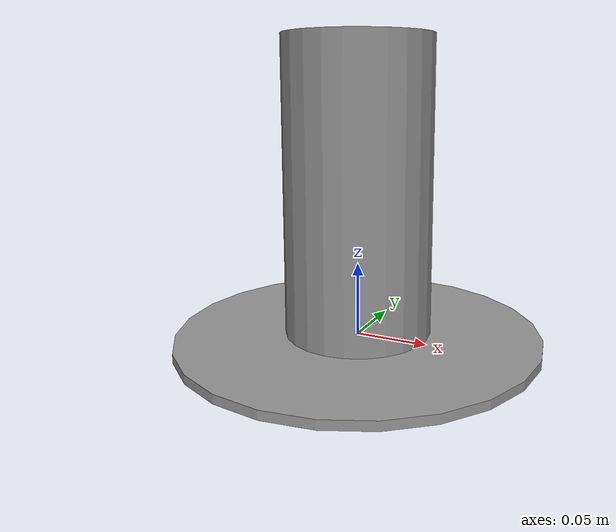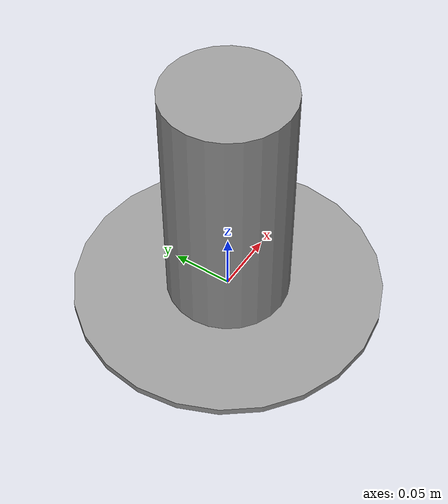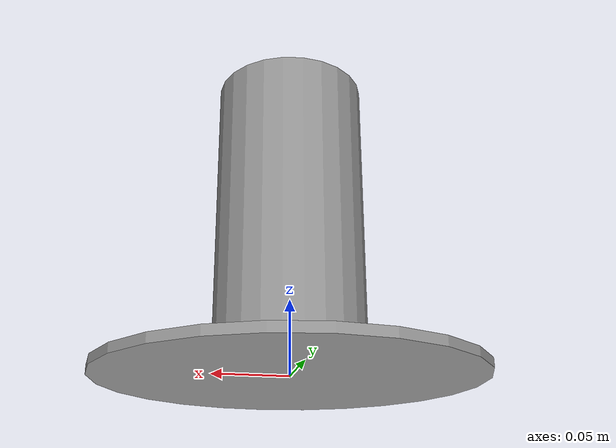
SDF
<?xml version='1.0'?>
<sdf version='1.6'>
  <model name='stand'>
    <link name='link_0'>
      <pose frame=''>0 0 0 0 0 0</pose>
      <inertial>
        <mass>5</mass>
        <inertia>
          <ixx>0.145833</ixx>
          <ixy>0</ixy>
          <ixz>0</ixz>
          <iyy>0.145833</iyy>
          <iyz>0</iyz>
          <izz>0.125</izz>
        </inertia>
        <pose frame=''>0 0 0 0 0 0</pose>
      </inertial>
      <gravity>1</gravity>
      <self_collide>0</self_collide>
      <kinematic>0</kinematic>
      <visual name='visual'>
        <pose frame=''>0 0 0 0 0 0</pose>
        <geometry>
          <cylinder>
            <radius>0.125</radius>
            <length>0.006</length>
          </cylinder>
        </geometry>
        <material>
          <lighting>1</lighting>
          <script>
            <uri>file://media/materials/scripts/gazebo.material</uri>
            <name>Gazebo/Grey</name>
          </script>
          <ambient>0.3 0.3 0.3 1</ambient>
          <diffuse>0.7 0.7 0.7 1</diffuse>
          <specular>0.01 0.01 0.01 1</specular>
          <emissive>0 0 0 1</emissive>
          <shader type='vertex'>
            <normal_map>__default__</normal_map>
          </shader>
        </material>
        <transparency>0</transparency>
        <cast_shadows>1</cast_shadows>
      </visual>
      <collision name='collision'>
        <laser_retro>0</laser_retro>
        <max_contacts>10</max_contacts>
        <pose frame=''>0 0 0 0 0 0</pose>
        <geometry>
          <cylinder>
            <radius>0.125</radius>
            <length>0.006</length>
          </cylinder>
        </geometry>
        <surface>
          <friction>
            <ode>
              <mu>1000000</mu>
              <mu2>1000000</mu2>
              <fdir1>0 0 0</fdir1>
              <slip1>0</slip1>
              <slip2>0</slip2>
            </ode>
            <torsional>
              <coefficient>1</coefficient>
              <patch_radius>0</patch_radius>
              <surface_radius>0</surface_radius>
              <use_patch_radius>1</use_patch_radius>
              <ode>
                <slip>0</slip>
              </ode>
            </torsional>
          </friction>
          <bounce>
            <restitution_coefficient>0</restitution_coefficient>
            <threshold>1e+06</threshold>
          </bounce>
          <contact>
            <collide_without_contact>0</collide_without_contact>
            <collide_without_contact_bitmask>1</collide_without_contact_bitmask>
            <collide_bitmask>1</collide_bitmask>
            <ode>
              <soft_cfm>0</soft_cfm>
              <soft_erp>0.2</soft_erp>
              <kp>1e+13</kp>
              <kd>1</kd>
              <max_vel>0.01</max_vel>
              <min_depth>0</min_depth>
            </ode>
            <bullet>
              <split_impulse>1</split_impulse>
              <split_impulse_penetration_threshold>-0.01</split_impulse_penetration_threshold>
              <soft_cfm>0</soft_cfm>
              <soft_erp>0.2</soft_erp>
              <kp>1e+13</kp>
              <kd>1</kd>
            </bullet>
          </contact>
        </surface>
      </collision>
    </link>
    <link name='link_1'>
      <pose frame=''>0 0 0.103 0 0 0</pose>
      <inertial>
        <mass>1</mass>
        <inertia>
          <ixx>0.145833</ixx>
          <ixy>0</ixy>
          <ixz>0</ixz>
          <iyy>0.145833</iyy>
          <iyz>0</iyz>
          <izz>0.125</izz>
        </inertia>
        <pose frame=''>0 0 0 0 0 0</pose>
      </inertial>
      <gravity>1</gravity>
      <self_collide>0</self_collide>
      <kinematic>0</kinematic>
      <visual name='visual'>
        <pose frame=''>0 0 0 0 0 0</pose>
        <geometry>
          <cylinder>
            <radius>0.05</radius>
            <length>0.2</length>
          </cylinder>
        </geometry>
        <material>
          <lighting>1</lighting>
          <script>
            <uri>file://media/materials/scripts/gazebo.material</uri>
            <name>Gazebo/Grey</name>
          </script>
          <ambient>0.3 0.3 0.3 1</ambient>
          <diffuse>0.7 0.7 0.7 1</diffuse>
          <specular>0.01 0.01 0.01 1</specular>
          <emissive>0 0 0 1</emissive>
          <shader type='vertex'>
            <normal_map>__default__</normal_map>
          </shader>
        </material>
        <transparency>0</transparency>
        <cast_shadows>1</cast_shadows>
      </visual>
      <collision name='collision'>
        <laser_retro>0</laser_retro>
        <max_contacts>10</max_contacts>
        <pose frame=''>0 0 0 0 0 0</pose>
        <geometry>
          <cylinder>
            <radius>0.05</radius>
            <length>0.2</length>
          </cylinder>
        </geometry>
        <surface>
          <friction>
            <ode>
              <mu>1000000</mu>
              <mu2>1000000</mu2>
              <fdir1>0 0 0</fdir1>
              <slip1>0</slip1>
              <slip2>0</slip2>
            </ode>
            <torsional>
              <coefficient>1</coefficient>
              <patch_radius>0</patch_radius>
              <surface_radius>0</surface_radius>
              <use_patch_radius>1</use_patch_radius>
              <ode>
                <slip>0</slip>
              </ode>
            </torsional>
          </friction>
          <bounce>
            <restitution_coefficient>0</restitution_coefficient>
            <threshold>1e+06</threshold>
          </bounce>
          <contact>
            <collide_without_contact>0</collide_without_contact>
            <collide_without_contact_bitmask>1</collide_without_contact_bitmask>
            <collide_bitmask>1</collide_bitmask>
            <ode>
              <soft_cfm>0</soft_cfm>
              <soft_erp>0.2</soft_erp>
              <kp>1e+13</kp>
              <kd>1</kd>
              <max_vel>0.01</max_vel>
              <min_depth>0</min_depth>
            </ode>
            <bullet>
              <split_impulse>1</split_impulse>
              <split_impulse_penetration_threshold>-0.01</split_impulse_penetration_threshold>
              <soft_cfm>0</soft_cfm>
              <soft_erp>0.2</soft_erp>
              <kp>1e+13</kp>
              <kd>1</kd>
            </bullet>
          </contact>
        </surface>
      </collision>
    </link>
    <joint name='link_0_JOINT_0' type='fixed'>
      <parent>link_0</parent>
      <child>link_1</child>
      <pose frame=''>0 0 0 0 0 0</pose>
      <physics>
        <ode>
          <limit>
            <cfm>0</cfm>
            <erp>0.2</erp>
          </limit>
          <suspension>
            <cfm>0</cfm>
            <erp>0.2</erp>
          </suspension>
        </ode>
      </physics>
    </joint>
    <static>0</static>
    <allow_auto_disable>1</allow_auto_disable>
    <plugin name='stand_fastener' filename='libstand_fastener.so' />
  </model>
</sdf>
